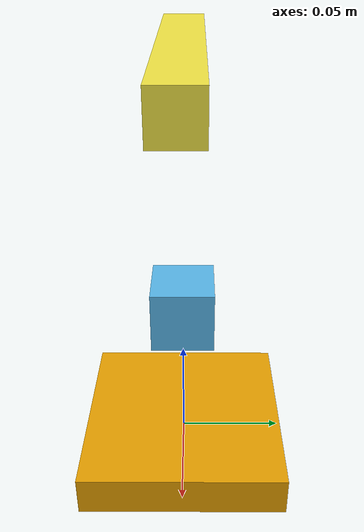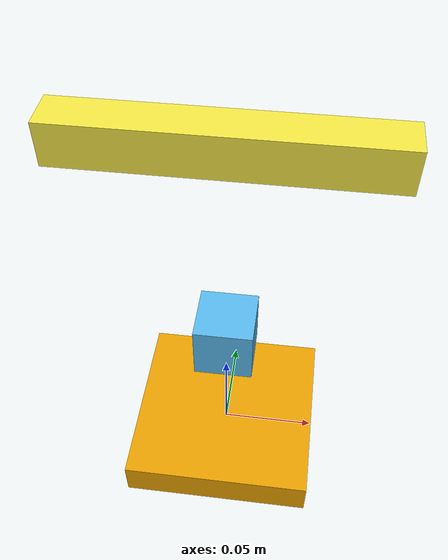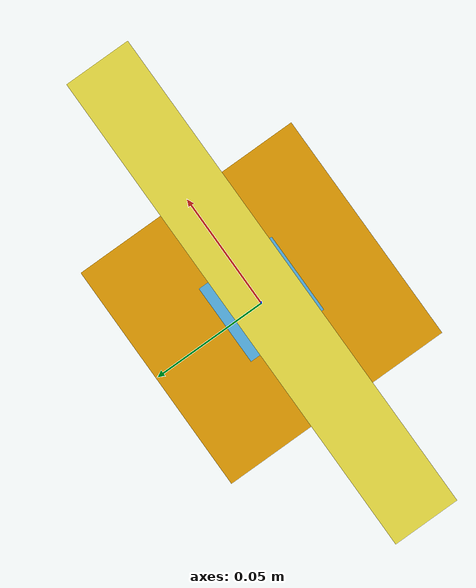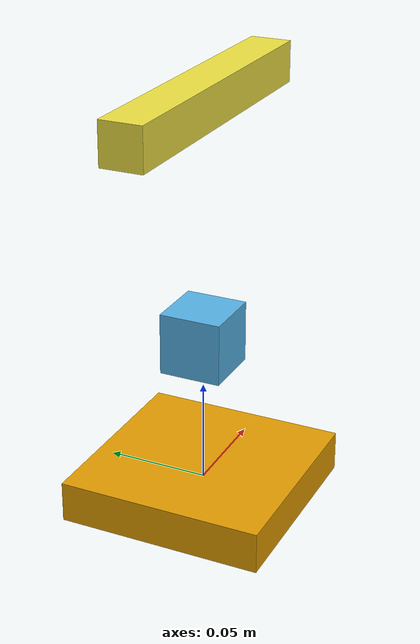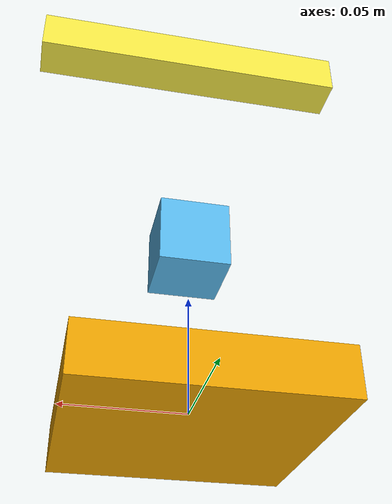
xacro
<?xml version="1.0"?>
<robot xmlns:xacro="http://www.ros.org/wiki/xacro">

  <xacro:parameter name="pi" value="3.1415"/>

    <link name="xtion_base">
      <inertial>
        <origin xyz="0 0 0" rpy="0 0 0"/>
        <mass value="0.01"/>
        <inertia ixx="0.01"  ixy="0"  ixz="0" iyy="0.01" iyz="0" izz="0.01" />
      </inertial>
      <visual>
            <origin xyz="0 0 0" rpy="0 0 0"/>
            <geometry>
                <box size="0.10 0.10 0.02" />
            </geometry>
        </visual>
    </link>

    <joint name="xtion_pan" type="revolute">
        <parent link="xtion_base"/>
        <child link="xtion_inter_link"/>
        <origin xyz="0 0 0.075" rpy="0 0 0"/>
        <axis xyz="0 0 1"/>
        <limit effort="100.0" velocity="1.0" lower="-3.1415" upper="3.1415"/>
    </joint>

    <link name="xtion_inter_link">
      <inertial>
        <origin xyz="0 0 0" rpy="0 0 0"/>
        <mass value="0.01"/>
        <inertia ixx="0.01"  ixy="0"  ixz="0" iyy="0.01" iyz="0" izz="0.01" />
      </inertial>
      <visual>
            <origin xyz="0 0 0" rpy="0 0 0"/>
            <geometry>
                <box size="0.03 0.03 0.03" />
            </geometry>
        </visual>
    </link>

    <joint name="xtion_tilt" type="revolute">
        <origin xyz="0 0 0.045" rpy="0 0 0"/>
        <parent link="xtion_inter_link"/>
        <child link="xtion_proto_link"/>
        <axis xyz=" -1 0 0"/>
        <limit effort="100.0" velocity="1.0" lower="-1.5707" upper="1.5707"/>
    </joint>

    <link name="xtion_proto_link">
      <inertial>
        <origin xyz="0 0 0" rpy="0 0 0"/>
        <mass value="0.01"/>
        <inertia ixx="0.01"  ixy="0"  ixz="0" iyy="0.01" iyz="0" izz="0.01" />
      </inertial>
    </link>

    <joint name="xtion_attachment" type="fixed">
        <parent link="xtion_proto_link"/>
        <child link="xtion_camera_link"/>
        <origin xyz="0 0 0.07" rpy="0 0 0"/>
        <axis xyz="0 0 1"/>
    </joint>

    <link name="xtion_camera_link">
      <inertial>
        <origin xyz="0 0 0" rpy="0 0 0"/>
        <mass value="0.01"/>
        <inertia ixx="0.01"  ixy="0"  ixz="0" iyy="0.01" iyz="0" izz="0.01" />
      </inertial>
      <visual>
            <origin xyz="0 0 0" rpy="0 0 0"/>
            <geometry>
                <box size="0.15 0.02 0.02" />
            </geometry>
        </visual>
    </link>

    <joint name="xtion_etc1" type="fixed">
        <parent link="xtion_camera_link"/>
        <child link="camera_frame_inter_link"/>
        <origin xyz="0 0 0.0" rpy="0 0 0"/>
        <axis xyz="0 0 1"/>
    </joint>

    <link name="camera_frame_inter_link"/>

    <joint name="xtion_etc2" type="fixed">
        <parent link="camera_frame_inter_link"/>
        <child link="camera_depth_optical_frame"/>
        <origin xyz="0 0 0.0" rpy="0 0 -1.5707"/>
        <axis xyz="0 0 1"/>
    </joint>

    <link name="camera_depth_optical_frame">
      <inertial>
        <origin xyz="0 0 0" rpy="0 0 0"/>
        <mass value="0.01"/>
        <inertia ixx="0.01"  ixy="0"  ixz="0" iyy="0.01" iyz="0" izz="0.01" />
      </inertial>
    </link>

    <joint name="camera_optical_joint" type="fixed">
    <!-- these values have to be these values otherwise the gazebo camera
        image won't be aligned properly with the frame it is supposedly
        originating from -->
    <origin xyz="0 0 0" rpy="-1.5707 0 -1.5707"/>
    <parent link="camera_depth_optical_frame"/>
    <child link="camera_depth_optical_frame_virtual"/>
  </joint>

    <link name="camera_depth_optical_frame_virtual"/>

</robot>
